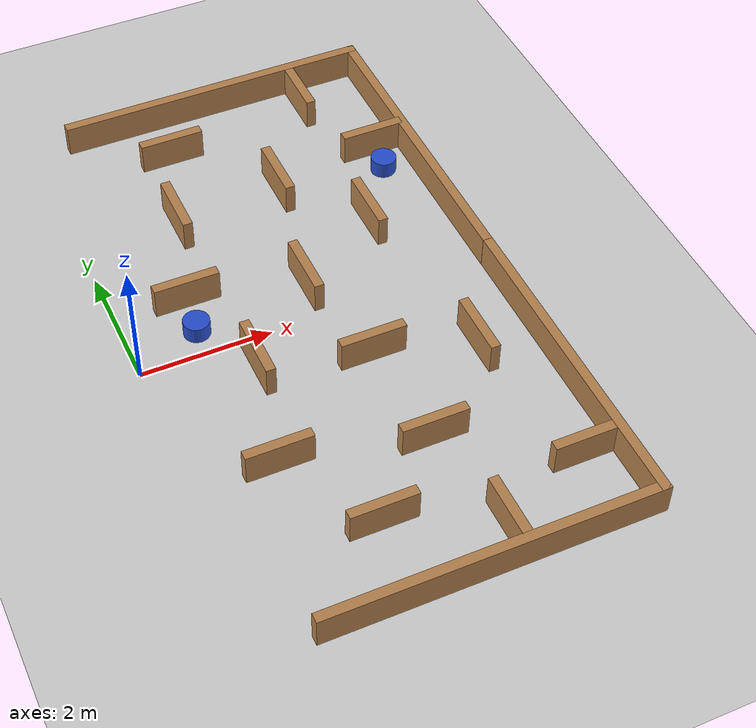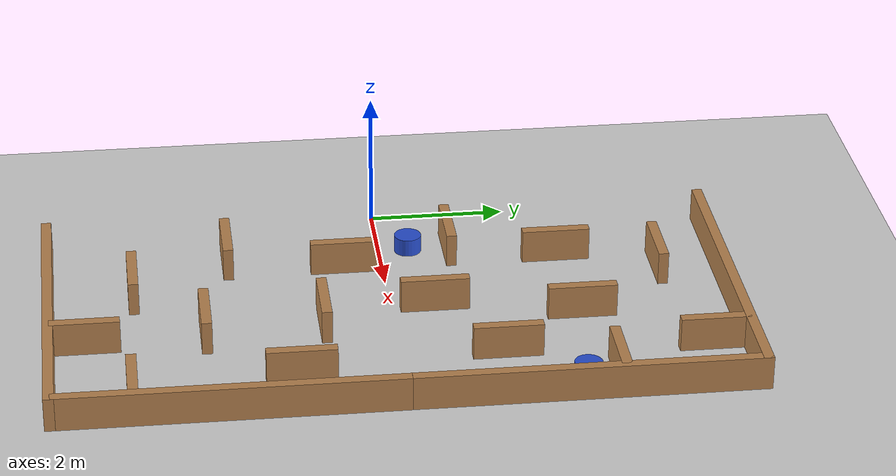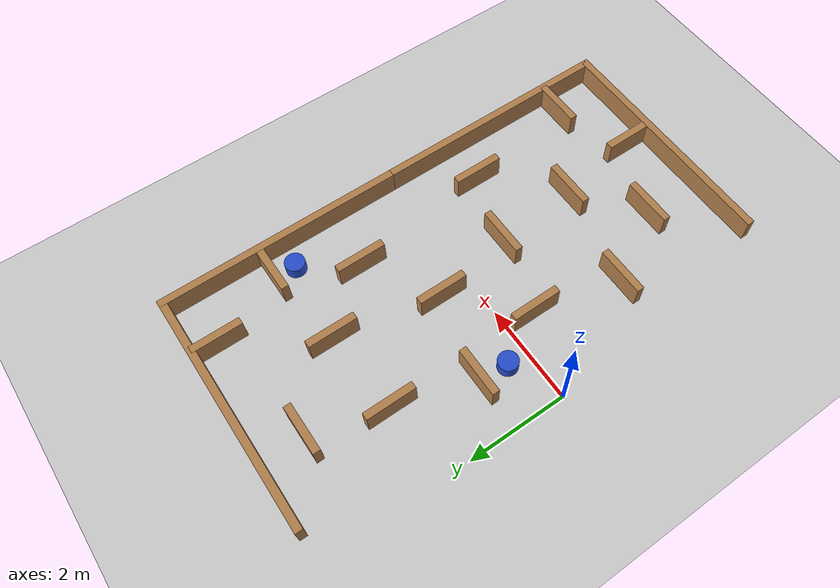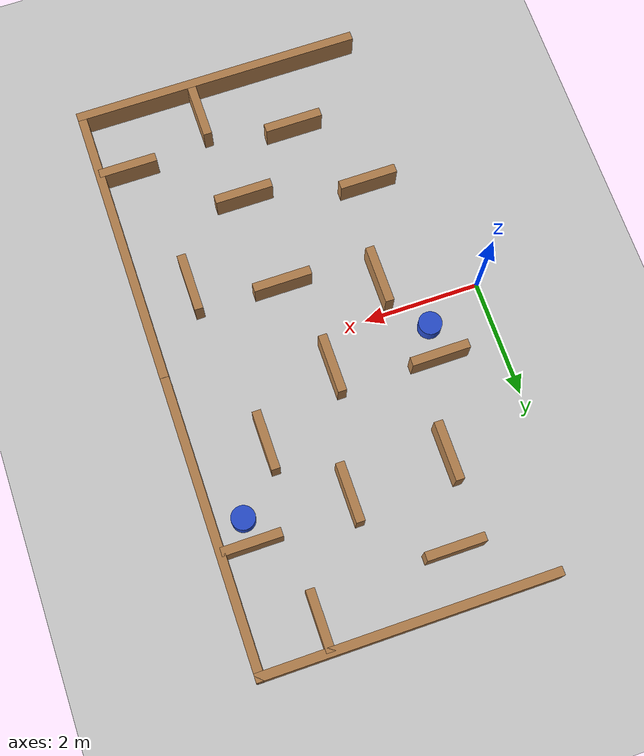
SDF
<sdf version="1.6">
 <world name="default">
  <model name="swarmbots_plaza_corner_1">
   <link name="Wall_11">
    <pose>-1.937 -1.467 0 0 -0 0</pose>
    <visual name="Wall_11_Visual">
     <pose>0 0 0.25 0 -0 0</pose>
     <geometry><box><size>1 0.15 0.5</size></box></geometry>
     <material>
      <script><uri>file://media/materials/scripts/gazebo.material</uri><name>Gazebo/Wood</name></script>
      <ambient>1 1 1 1</ambient>
      <shader type="pixel"/>
     </material>
    </visual>
    <collision name="Wall_11_Collision">
     <pose>0 0 0.25 0 -0 0</pose>
     <geometry><box><size>1 0.15 0.5</size></box></geometry>
     <surface>
      <friction>
       <ode><mu>1</mu><mu2>1</mu2><fdir1>0 0 0</fdir1><slip1>0</slip1><slip2>0</slip2></ode>
       <torsional>
        <coefficient>1</coefficient>
        <patch_radius>0</patch_radius>
        <surface_radius>0</surface_radius>
        <use_patch_radius>1</use_patch_radius>
        <ode><slip>0</slip></ode>
       </torsional>
      </friction>
      <bounce><restitution_coefficient>0</restitution_coefficient><threshold>1e+06</threshold></bounce>
      <contact>
       <collide_without_contact>0</collide_without_contact>
       <collide_without_contact_bitmask>1</collide_without_contact_bitmask>
       <collide_bitmask>1</collide_bitmask>
       <ode>
        <soft_cfm>0</soft_cfm>
        <soft_erp>0.2</soft_erp>
        <kp>1e+13</kp>
        <kd>1</kd>
        <max_vel>0.01</max_vel>
        <min_depth>0</min_depth>
       </ode>
       <bullet>
        <split_impulse>1</split_impulse>
        <split_impulse_penetration_threshold>-0.01</split_impulse_penetration_threshold>
        <soft_cfm>0</soft_cfm>
        <soft_erp>0.2</soft_erp>
        <kp>1e+13</kp>
        <kd>1</kd>
       </bullet>
      </contact>
     </surface>
    </collision>
   </link>
   <link name="Wall_13">
    <pose>-0.22 -1.866 0 0 0 -1.5708</pose>
    <visual name="Wall_13_Visual">
     <pose>0 0 0.25 0 -0 0</pose>
     <geometry><box><size>1 0.15 0.5</size></box></geometry>
     <material>
      <script><uri>file://media/materials/scripts/gazebo.material</uri><name>Gazebo/Wood</name></script>
      <ambient>1 1 1 1</ambient>
      <shader type="pixel"/>
     </material>
    </visual>
    <collision name="Wall_13_Collision">
     <pose>0 0 0.25 0 -0 0</pose>
     <geometry><box><size>1 0.15 0.5</size></box></geometry>
     <surface>
      <friction>
       <ode><mu>1</mu><mu2>1</mu2><fdir1>0 0 0</fdir1><slip1>0</slip1><slip2>0</slip2></ode>
       <torsional>
        <coefficient>1</coefficient>
        <patch_radius>0</patch_radius>
        <surface_radius>0</surface_radius>
        <use_patch_radius>1</use_patch_radius>
        <ode><slip>0</slip></ode>
       </torsional>
      </friction>
      <bounce><restitution_coefficient>0</restitution_coefficient><threshold>1e+06</threshold></bounce>
      <contact>
       <collide_without_contact>0</collide_without_contact>
       <collide_without_contact_bitmask>1</collide_without_contact_bitmask>
       <collide_bitmask>1</collide_bitmask>
       <ode>
        <soft_cfm>0</soft_cfm>
        <soft_erp>0.2</soft_erp>
        <kp>1e+13</kp>
        <kd>1</kd>
        <max_vel>0.01</max_vel>
        <min_depth>0</min_depth>
       </ode>
       <bullet>
        <split_impulse>1</split_impulse>
        <split_impulse_penetration_threshold>-0.01</split_impulse_penetration_threshold>
        <soft_cfm>0</soft_cfm>
        <soft_erp>0.2</soft_erp>
        <kp>1e+13</kp>
        <kd>1</kd>
       </bullet>
      </contact>
     </surface>
    </collision>
   </link>
   <link name="Wall_15">
    <pose>1.195 -1.002 0 0 -0 1.5708</pose>
    <visual name="Wall_15_Visual">
     <pose>0 0 0.25 0 -0 0</pose>
     <geometry><box><size>1 0.15 0.5</size></box></geometry>
     <material>
      <script><uri>file://media/materials/scripts/gazebo.material</uri><name>Gazebo/Wood</name></script>
      <ambient>1 1 1 1</ambient>
      <shader type="pixel"/>
     </material>
    </visual>
    <collision name="Wall_15_Collision">
     <pose>0 0 0.25 0 -0 0</pose>
     <geometry><box><size>1 0.15 0.5</size></box></geometry>
     <surface>
      <friction>
       <ode><mu>1</mu><mu2>1</mu2><fdir1>0 0 0</fdir1><slip1>0</slip1><slip2>0</slip2></ode>
       <torsional>
        <coefficient>1</coefficient>
        <patch_radius>0</patch_radius>
        <surface_radius>0</surface_radius>
        <use_patch_radius>1</use_patch_radius>
        <ode><slip>0</slip></ode>
       </torsional>
      </friction>
      <bounce><restitution_coefficient>0</restitution_coefficient><threshold>1e+06</threshold></bounce>
      <contact>
       <collide_without_contact>0</collide_without_contact>
       <collide_without_contact_bitmask>1</collide_without_contact_bitmask>
       <collide_bitmask>1</collide_bitmask>
       <ode>
        <soft_cfm>0</soft_cfm>
        <soft_erp>0.2</soft_erp>
        <kp>1e+13</kp>
        <kd>1</kd>
        <max_vel>0.01</max_vel>
        <min_depth>0</min_depth>
       </ode>
       <bullet>
        <split_impulse>1</split_impulse>
        <split_impulse_penetration_threshold>-0.01</split_impulse_penetration_threshold>
        <soft_cfm>0</soft_cfm>
        <soft_erp>0.2</soft_erp>
        <kp>1e+13</kp>
        <kd>1</kd>
       </bullet>
      </contact>
     </surface>
    </collision>
   </link>
   <link name="Wall_17">
    <pose>1.288 1.93 0 0 0 -1.5708</pose>
    <visual name="Wall_17_Visual">
     <pose>0 0 0.25 0 -0 0</pose>
     <geometry><box><size>1 0.15 0.5</size></box></geometry>
     <material>
      <script><uri>file://media/materials/scripts/gazebo.material</uri><name>Gazebo/Wood</name></script>
      <ambient>1 1 1 1</ambient>
      <shader type="pixel"/>
     </material>
    </visual>
    <collision name="Wall_17_Collision">
     <pose>0 0 0.25 0 -0 0</pose>
     <geometry><box><size>1 0.15 0.5</size></box></geometry>
     <surface>
      <friction>
       <ode><mu>1</mu><mu2>1</mu2><fdir1>0 0 0</fdir1><slip1>0</slip1><slip2>0</slip2></ode>
       <torsional>
        <coefficient>1</coefficient>
        <patch_radius>0</patch_radius>
        <surface_radius>0</surface_radius>
        <use_patch_radius>1</use_patch_radius>
        <ode><slip>0</slip></ode>
       </torsional>
      </friction>
      <bounce><restitution_coefficient>0</restitution_coefficient><threshold>1e+06</threshold></bounce>
      <contact>
       <collide_without_contact>0</collide_without_contact>
       <collide_without_contact_bitmask>1</collide_without_contact_bitmask>
       <collide_bitmask>1</collide_bitmask>
       <ode>
        <soft_cfm>0</soft_cfm>
        <soft_erp>0.2</soft_erp>
        <kp>1e+13</kp>
        <kd>1</kd>
        <max_vel>0.01</max_vel>
        <min_depth>0</min_depth>
       </ode>
       <bullet>
        <split_impulse>1</split_impulse>
        <split_impulse_penetration_threshold>-0.01</split_impulse_penetration_threshold>
        <soft_cfm>0</soft_cfm>
        <soft_erp>0.2</soft_erp>
        <kp>1e+13</kp>
        <kd>1</kd>
       </bullet>
      </contact>
     </surface>
    </collision>
   </link>
   <link name="Wall_19">
    <pose>1.91128 0.4632 0 0 -0 0</pose>
    <visual name="Wall_19_Visual">
     <pose>0 0 0.25 0 -0 0</pose>
     <geometry><box><size>1 0.15 0.5</size></box></geometry>
     <material>
      <script><uri>file://media/materials/scripts/gazebo.material</uri><name>Gazebo/Wood</name></script>
      <ambient>1 1 1 1</ambient>
      <shader type="pixel"/>
     </material>
    </visual>
    <collision name="Wall_19_Collision">
     <pose>0 0 0.25 0 -0 0</pose>
     <geometry><box><size>1 0.15 0.5</size></box></geometry>
     <surface>
      <friction>
       <ode><mu>1</mu><mu2>1</mu2><fdir1>0 0 0</fdir1><slip1>0</slip1><slip2>0</slip2></ode>
       <torsional>
        <coefficient>1</coefficient>
        <patch_radius>0</patch_radius>
        <surface_radius>0</surface_radius>
        <use_patch_radius>1</use_patch_radius>
        <ode><slip>0</slip></ode>
       </torsional>
      </friction>
      <bounce><restitution_coefficient>0</restitution_coefficient><threshold>1e+06</threshold></bounce>
      <contact>
       <collide_without_contact>0</collide_without_contact>
       <collide_without_contact_bitmask>1</collide_without_contact_bitmask>
       <collide_bitmask>1</collide_bitmask>
       <ode>
        <soft_cfm>0</soft_cfm>
        <soft_erp>0.2</soft_erp>
        <kp>1e+13</kp>
        <kd>1</kd>
        <max_vel>0.01</max_vel>
        <min_depth>0</min_depth>
       </ode>
       <bullet>
        <split_impulse>1</split_impulse>
        <split_impulse_penetration_threshold>-0.01</split_impulse_penetration_threshold>
        <soft_cfm>0</soft_cfm>
        <soft_erp>0.2</soft_erp>
        <kp>1e+13</kp>
        <kd>1</kd>
       </bullet>
      </contact>
     </surface>
    </collision>
   </link>
   <link name="Wall_2">
    <pose>0 2.425 0 0 -0 0</pose>
    <visual name="Wall_2_Visual">
     <pose>0 0 0.25 0 -0 0</pose>
     <geometry><box><size>5 0.15 0.5</size></box></geometry>
     <material>
      <script><uri>file://media/materials/scripts/gazebo.material</uri><name>Gazebo/Wood</name></script>
      <ambient>1 1 1 1</ambient>
      <shader type="pixel"/>
     </material>
    </visual>
    <collision name="Wall_2_Collision">
     <pose>0 0 0.25 0 -0 0</pose>
     <geometry><box><size>5 0.15 0.5</size></box></geometry>
     <surface>
      <friction>
       <ode><mu>1</mu><mu2>1</mu2><fdir1>0 0 0</fdir1><slip1>0</slip1><slip2>0</slip2></ode>
       <torsional>
        <coefficient>1</coefficient>
        <patch_radius>0</patch_radius>
        <surface_radius>0</surface_radius>
        <use_patch_radius>1</use_patch_radius>
        <ode><slip>0</slip></ode>
       </torsional>
      </friction>
      <bounce><restitution_coefficient>0</restitution_coefficient><threshold>1e+06</threshold></bounce>
      <contact>
       <collide_without_contact>0</collide_without_contact>
       <collide_without_contact_bitmask>1</collide_without_contact_bitmask>
       <collide_bitmask>1</collide_bitmask>
       <ode>
        <soft_cfm>0</soft_cfm>
        <soft_erp>0.2</soft_erp>
        <kp>1e+13</kp>
        <kd>1</kd>
        <max_vel>0.01</max_vel>
        <min_depth>0</min_depth>
       </ode>
       <bullet>
        <split_impulse>1</split_impulse>
        <split_impulse_penetration_threshold>-0.01</split_impulse_penetration_threshold>
        <soft_cfm>0</soft_cfm>
        <soft_erp>0.2</soft_erp>
        <kp>1e+13</kp>
        <kd>1</kd>
       </bullet>
      </contact>
     </surface>
    </collision>
   </link>
   <link name="Wall_21">
    <pose>0.204 0.215 0 0 0 -1.5708</pose>
    <visual name="Wall_21_Visual">
     <pose>0 0 0.25 0 -0 0</pose>
     <geometry><box><size>1 0.15 0.5</size></box></geometry>
     <material>
      <script><uri>file://media/materials/scripts/gazebo.material</uri><name>Gazebo/Wood</name></script>
      <ambient>1 1 1 1</ambient>
      <shader type="pixel"/>
     </material>
    </visual>
    <collision name="Wall_21_Collision">
     <pose>0 0 0.25 0 -0 0</pose>
     <geometry><box><size>1 0.15 0.5</size></box></geometry>
     <surface>
      <friction>
       <ode><mu>1</mu><mu2>1</mu2><fdir1>0 0 0</fdir1><slip1>0</slip1><slip2>0</slip2></ode>
       <torsional>
        <coefficient>1</coefficient>
        <patch_radius>0</patch_radius>
        <surface_radius>0</surface_radius>
        <use_patch_radius>1</use_patch_radius>
        <ode><slip>0</slip></ode>
       </torsional>
      </friction>
      <bounce><restitution_coefficient>0</restitution_coefficient><threshold>1e+06</threshold></bounce>
      <contact>
       <collide_without_contact>0</collide_without_contact>
       <collide_without_contact_bitmask>1</collide_without_contact_bitmask>
       <collide_bitmask>1</collide_bitmask>
       <ode>
        <soft_cfm>0</soft_cfm>
        <soft_erp>0.2</soft_erp>
        <kp>1e+13</kp>
        <kd>1</kd>
        <max_vel>0.01</max_vel>
        <min_depth>0</min_depth>
       </ode>
       <bullet>
        <split_impulse>1</split_impulse>
        <split_impulse_penetration_threshold>-0.01</split_impulse_penetration_threshold>
        <soft_cfm>0</soft_cfm>
        <soft_erp>0.2</soft_erp>
        <kp>1e+13</kp>
        <kd>1</kd>
       </bullet>
      </contact>
     </surface>
    </collision>
   </link>
   <link name="Wall_3">
    <pose>2.425 0 0 0 0 -1.5708</pose>
    <visual name="Wall_3_Visual">
     <pose>0 0 0.25 0 -0 0</pose>
     <geometry><box><size>5 0.15 0.5</size></box></geometry>
     <material>
      <script><uri>file://media/materials/scripts/gazebo.material</uri><name>Gazebo/Wood</name></script>
      <ambient>1 1 1 1</ambient>
      <shader type="pixel"/>
     </material>
    </visual>
    <collision name="Wall_3_Collision">
     <pose>0 0 0.25 0 -0 0</pose>
     <geometry><box><size>5 0.15 0.5</size></box></geometry>
     <surface>
      <friction>
       <ode><mu>1</mu><mu2>1</mu2><fdir1>0 0 0</fdir1><slip1>0</slip1><slip2>0</slip2></ode>
       <torsional>
        <coefficient>1</coefficient>
        <patch_radius>0</patch_radius>
        <surface_radius>0</surface_radius>
        <use_patch_radius>1</use_patch_radius>
        <ode><slip>0</slip></ode>
       </torsional>
      </friction>
      <bounce><restitution_coefficient>0</restitution_coefficient><threshold>1e+06</threshold></bounce>
      <contact>
       <collide_without_contact>0</collide_without_contact>
       <collide_without_contact_bitmask>1</collide_without_contact_bitmask>
       <collide_bitmask>1</collide_bitmask>
       <ode>
        <soft_cfm>0</soft_cfm>
        <soft_erp>0.2</soft_erp>
        <kp>1e+13</kp>
        <kd>1</kd>
        <max_vel>0.01</max_vel>
        <min_depth>0</min_depth>
       </ode>
       <bullet>
        <split_impulse>1</split_impulse>
        <split_impulse_penetration_threshold>-0.01</split_impulse_penetration_threshold>
        <soft_cfm>0</soft_cfm>
        <soft_erp>0.2</soft_erp>
        <kp>1e+13</kp>
        <kd>1</kd>
       </bullet>
      </contact>
     </surface>
    </collision>
   </link>
   <link name="Wall_7">
    <pose>-1.064 1.548 0 0 -0 0</pose>
    <visual name="Wall_7_Visual">
     <pose>0 0 0.25 0 -0 0</pose>
     <geometry><box><size>1 0.15 0.5</size></box></geometry>
     <material>
      <script><uri>file://media/materials/scripts/gazebo.material</uri><name>Gazebo/Wood</name></script>
      <ambient>1 1 1 1</ambient>
      <shader type="pixel"/>
     </material>
    </visual>
    <collision name="Wall_7_Collision">
     <pose>0 0 0.25 0 -0 0</pose>
     <geometry><box><size>1 0.15 0.5</size></box></geometry>
     <surface>
      <friction>
       <ode><mu>1</mu><mu2>1</mu2><fdir1>0 0 0</fdir1><slip1>0</slip1><slip2>0</slip2></ode>
       <torsional>
        <coefficient>1</coefficient>
        <patch_radius>0</patch_radius>
        <surface_radius>0</surface_radius>
        <use_patch_radius>1</use_patch_radius>
        <ode><slip>0</slip></ode>
       </torsional>
      </friction>
      <bounce><restitution_coefficient>0</restitution_coefficient><threshold>1e+06</threshold></bounce>
      <contact>
       <collide_without_contact>0</collide_without_contact>
       <collide_without_contact_bitmask>1</collide_without_contact_bitmask>
       <collide_bitmask>1</collide_bitmask>
       <ode>
        <soft_cfm>0</soft_cfm>
        <soft_erp>0.2</soft_erp>
        <kp>1e+13</kp>
        <kd>1</kd>
        <max_vel>0.01</max_vel>
        <min_depth>0</min_depth>
       </ode>
       <bullet>
        <split_impulse>1</split_impulse>
        <split_impulse_penetration_threshold>-0.01</split_impulse_penetration_threshold>
        <soft_cfm>0</soft_cfm>
        <soft_erp>0.2</soft_erp>
        <kp>1e+13</kp>
        <kd>1</kd>
       </bullet>
      </contact>
     </surface>
    </collision>
   </link>
   <link name="Wall_9">
    <pose>-1.502 0.092 0 0 0 -1.5708</pose>
    <visual name="Wall_9_Visual">
     <pose>0 0 0.25 0 -0 0</pose>
     <geometry><box><size>1 0.15 0.5</size></box></geometry>
     <material>
      <script><uri>file://media/materials/scripts/gazebo.material</uri><name>Gazebo/Wood</name></script>
      <ambient>1 1 1 1</ambient>
      <shader type="pixel"/>
     </material>
    </visual>
    <collision name="Wall_9_Collision">
     <pose>0 0 0.25 0 -0 0</pose>
     <geometry><box><size>1 0.15 0.5</size></box></geometry>
     <surface>
      <friction>
       <ode><mu>1</mu><mu2>1</mu2><fdir1>0 0 0</fdir1><slip1>0</slip1><slip2>0</slip2></ode>
       <torsional>
        <coefficient>1</coefficient>
        <patch_radius>0</patch_radius>
        <surface_radius>0</surface_radius>
        <use_patch_radius>1</use_patch_radius>
        <ode><slip>0</slip></ode>
       </torsional>
      </friction>
      <bounce><restitution_coefficient>0</restitution_coefficient><threshold>1e+06</threshold></bounce>
      <contact>
       <collide_without_contact>0</collide_without_contact>
       <collide_without_contact_bitmask>1</collide_without_contact_bitmask>
       <collide_bitmask>1</collide_bitmask>
       <ode>
        <soft_cfm>0</soft_cfm>
        <soft_erp>0.2</soft_erp>
        <kp>1e+13</kp>
        <kd>1</kd>
        <max_vel>0.01</max_vel>
        <min_depth>0</min_depth>
       </ode>
       <bullet>
        <split_impulse>1</split_impulse>
        <split_impulse_penetration_threshold>-0.01</split_impulse_penetration_threshold>
        <soft_cfm>0</soft_cfm>
        <soft_erp>0.2</soft_erp>
        <kp>1e+13</kp>
        <kd>1</kd>
       </bullet>
      </contact>
     </surface>
    </collision>
   </link>
   <static>1</static>
   <pose>3.02851 2.5 0 0 -0 0</pose>
  </model>
  <model name="swarmbots_plaza_corner_1_2">
   <link name="Wall_11">
    <pose>-1.937 -1.467 0 0 -0 0</pose>
    <visual name="Wall_11_Visual">
     <pose>0 0 0.25 0 -0 0</pose>
     <geometry><box><size>1 0.15 0.5</size></box></geometry>
     <material>
      <script><uri>file://media/materials/scripts/gazebo.material</uri><name>Gazebo/Wood</name></script>
      <ambient>1 1 1 1</ambient>
      <shader type="pixel"/>
     </material>
    </visual>
    <collision name="Wall_11_Collision">
     <pose>0 0 0.25 0 -0 0</pose>
     <geometry><box><size>1 0.15 0.5</size></box></geometry>
     <surface>
      <friction>
       <ode><mu>1</mu><mu2>1</mu2><fdir1>0 0 0</fdir1><slip1>0</slip1><slip2>0</slip2></ode>
       <torsional>
        <coefficient>1</coefficient>
        <patch_radius>0</patch_radius>
        <surface_radius>0</surface_radius>
        <use_patch_radius>1</use_patch_radius>
        <ode><slip>0</slip></ode>
       </torsional>
      </friction>
      <bounce><restitution_coefficient>0</restitution_coefficient><threshold>1e+06</threshold></bounce>
      <contact>
       <collide_without_contact>0</collide_without_contact>
       <collide_without_contact_bitmask>1</collide_without_contact_bitmask>
       <collide_bitmask>1</collide_bitmask>
       <ode>
        <soft_cfm>0</soft_cfm>
        <soft_erp>0.2</soft_erp>
        <kp>1e+13</kp>
        <kd>1</kd>
        <max_vel>0.01</max_vel>
        <min_depth>0</min_depth>
       </ode>
       <bullet>
        <split_impulse>1</split_impulse>
        <split_impulse_penetration_threshold>-0.01</split_impulse_penetration_threshold>
        <soft_cfm>0</soft_cfm>
        <soft_erp>0.2</soft_erp>
        <kp>1e+13</kp>
        <kd>1</kd>
       </bullet>
      </contact>
     </surface>
    </collision>
   </link>
   <link name="Wall_13">
    <pose>-0.22 -1.866 0 0 0 -1.5708</pose>
    <visual name="Wall_13_Visual">
     <pose>0 0 0.25 0 -0 0</pose>
     <geometry><box><size>1 0.15 0.5</size></box></geometry>
     <material>
      <script><uri>file://media/materials/scripts/gazebo.material</uri><name>Gazebo/Wood</name></script>
      <ambient>1 1 1 1</ambient>
      <shader type="pixel"/>
     </material>
    </visual>
    <collision name="Wall_13_Collision">
     <pose>0 0 0.25 0 -0 0</pose>
     <geometry><box><size>1 0.15 0.5</size></box></geometry>
     <surface>
      <friction>
       <ode><mu>1</mu><mu2>1</mu2><fdir1>0 0 0</fdir1><slip1>0</slip1><slip2>0</slip2></ode>
       <torsional>
        <coefficient>1</coefficient>
        <patch_radius>0</patch_radius>
        <surface_radius>0</surface_radius>
        <use_patch_radius>1</use_patch_radius>
        <ode><slip>0</slip></ode>
       </torsional>
      </friction>
      <bounce><restitution_coefficient>0</restitution_coefficient><threshold>1e+06</threshold></bounce>
      <contact>
       <collide_without_contact>0</collide_without_contact>
       <collide_without_contact_bitmask>1</collide_without_contact_bitmask>
       <collide_bitmask>1</collide_bitmask>
       <ode>
        <soft_cfm>0</soft_cfm>
        <soft_erp>0.2</soft_erp>
        <kp>1e+13</kp>
        <kd>1</kd>
        <max_vel>0.01</max_vel>
        <min_depth>0</min_depth>
       </ode>
       <bullet>
        <split_impulse>1</split_impulse>
        <split_impulse_penetration_threshold>-0.01</split_impulse_penetration_threshold>
        <soft_cfm>0</soft_cfm>
        <soft_erp>0.2</soft_erp>
        <kp>1e+13</kp>
        <kd>1</kd>
       </bullet>
      </contact>
     </surface>
    </collision>
   </link>
   <link name="Wall_15">
    <pose>1.195 -1.002 0 0 -0 1.5708</pose>
    <visual name="Wall_15_Visual">
     <pose>0 0 0.25 0 -0 0</pose>
     <geometry><box><size>1 0.15 0.5</size></box></geometry>
     <material>
      <script><uri>file://media/materials/scripts/gazebo.material</uri><name>Gazebo/Wood</name></script>
      <ambient>1 1 1 1</ambient>
      <shader type="pixel"/>
     </material>
    </visual>
    <collision name="Wall_15_Collision">
     <pose>0 0 0.25 0 -0 0</pose>
     <geometry><box><size>1 0.15 0.5</size></box></geometry>
     <surface>
      <friction>
       <ode><mu>1</mu><mu2>1</mu2><fdir1>0 0 0</fdir1><slip1>0</slip1><slip2>0</slip2></ode>
       <torsional>
        <coefficient>1</coefficient>
        <patch_radius>0</patch_radius>
        <surface_radius>0</surface_radius>
        <use_patch_radius>1</use_patch_radius>
        <ode><slip>0</slip></ode>
       </torsional>
      </friction>
      <bounce><restitution_coefficient>0</restitution_coefficient><threshold>1e+06</threshold></bounce>
      <contact>
       <collide_without_contact>0</collide_without_contact>
       <collide_without_contact_bitmask>1</collide_without_contact_bitmask>
       <collide_bitmask>1</collide_bitmask>
       <ode>
        <soft_cfm>0</soft_cfm>
        <soft_erp>0.2</soft_erp>
        <kp>1e+13</kp>
        <kd>1</kd>
        <max_vel>0.01</max_vel>
        <min_depth>0</min_depth>
       </ode>
       <bullet>
        <split_impulse>1</split_impulse>
        <split_impulse_penetration_threshold>-0.01</split_impulse_penetration_threshold>
        <soft_cfm>0</soft_cfm>
        <soft_erp>0.2</soft_erp>
        <kp>1e+13</kp>
        <kd>1</kd>
       </bullet>
      </contact>
     </surface>
    </collision>
   </link>
   <link name="Wall_17">
    <pose>1.288 1.93 0 0 0 -1.5708</pose>
    <visual name="Wall_17_Visual">
     <pose>0 0 0.25 0 -0 0</pose>
     <geometry><box><size>1 0.15 0.5</size></box></geometry>
     <material>
      <script><uri>file://media/materials/scripts/gazebo.material</uri><name>Gazebo/Wood</name></script>
      <ambient>1 1 1 1</ambient>
      <shader type="pixel"/>
     </material>
    </visual>
    <collision name="Wall_17_Collision">
     <pose>0 0 0.25 0 -0 0</pose>
     <geometry><box><size>1 0.15 0.5</size></box></geometry>
     <surface>
      <friction>
       <ode><mu>1</mu><mu2>1</mu2><fdir1>0 0 0</fdir1><slip1>0</slip1><slip2>0</slip2></ode>
       <torsional>
        <coefficient>1</coefficient>
        <patch_radius>0</patch_radius>
        <surface_radius>0</surface_radius>
        <use_patch_radius>1</use_patch_radius>
        <ode><slip>0</slip></ode>
       </torsional>
      </friction>
      <bounce><restitution_coefficient>0</restitution_coefficient><threshold>1e+06</threshold></bounce>
      <contact>
       <collide_without_contact>0</collide_without_contact>
       <collide_without_contact_bitmask>1</collide_without_contact_bitmask>
       <collide_bitmask>1</collide_bitmask>
       <ode>
        <soft_cfm>0</soft_cfm>
        <soft_erp>0.2</soft_erp>
        <kp>1e+13</kp>
        <kd>1</kd>
        <max_vel>0.01</max_vel>
        <min_depth>0</min_depth>
       </ode>
       <bullet>
        <split_impulse>1</split_impulse>
        <split_impulse_penetration_threshold>-0.01</split_impulse_penetration_threshold>
        <soft_cfm>0</soft_cfm>
        <soft_erp>0.2</soft_erp>
        <kp>1e+13</kp>
        <kd>1</kd>
       </bullet>
      </contact>
     </surface>
    </collision>
   </link>
   <link name="Wall_19">
    <pose>1.91128 0.4632 0 0 -0 0</pose>
    <visual name="Wall_19_Visual">
     <pose>0 0 0.25 0 -0 0</pose>
     <geometry><box><size>1 0.15 0.5</size></box></geometry>
     <material>
      <script><uri>file://media/materials/scripts/gazebo.material</uri><name>Gazebo/Wood</name></script>
      <ambient>1 1 1 1</ambient>
      <shader type="pixel"/>
     </material>
    </visual>
    <collision name="Wall_19_Collision">
     <pose>0 0 0.25 0 -0 0</pose>
     <geometry><box><size>1 0.15 0.5</size></box></geometry>
     <surface>
      <friction>
       <ode><mu>1</mu><mu2>1</mu2><fdir1>0 0 0</fdir1><slip1>0</slip1><slip2>0</slip2></ode>
       <torsional>
        <coefficient>1</coefficient>
        <patch_radius>0</patch_radius>
        <surface_radius>0</surface_radius>
        <use_patch_radius>1</use_patch_radius>
        <ode><slip>0</slip></ode>
       </torsional>
      </friction>
      <bounce><restitution_coefficient>0</restitution_coefficient><threshold>1e+06</threshold></bounce>
      <contact>
       <collide_without_contact>0</collide_without_contact>
       <collide_without_contact_bitmask>1</collide_without_contact_bitmask>
       <collide_bitmask>1</collide_bitmask>
       <ode>
        <soft_cfm>0</soft_cfm>
        <soft_erp>0.2</soft_erp>
        <kp>1e+13</kp>
        <kd>1</kd>
        <max_vel>0.01</max_vel>
        <min_depth>0</min_depth>
       </ode>
       <bullet>
        <split_impulse>1</split_impulse>
        <split_impulse_penetration_threshold>-0.01</split_impulse_penetration_threshold>
        <soft_cfm>0</soft_cfm>
        <soft_erp>0.2</soft_erp>
        <kp>1e+13</kp>
        <kd>1</kd>
       </bullet>
      </contact>
     </surface>
    </collision>
   </link>
   <link name="Wall_2">
    <pose>0 2.425 0 0 -0 0</pose>
    <visual name="Wall_2_Visual">
     <pose>0 0 0.25 0 -0 0</pose>
     <geometry><box><size>5 0.15 0.5</size></box></geometry>
     <material>
      <script><uri>file://media/materials/scripts/gazebo.material</uri><name>Gazebo/Wood</name></script>
      <ambient>1 1 1 1</ambient>
      <shader type="pixel"/>
     </material>
    </visual>
    <collision name="Wall_2_Collision">
     <pose>0 0 0.25 0 -0 0</pose>
     <geometry><box><size>5 0.15 0.5</size></box></geometry>
     <surface>
      <friction>
       <ode><mu>1</mu><mu2>1</mu2><fdir1>0 0 0</fdir1><slip1>0</slip1><slip2>0</slip2></ode>
       <torsional>
        <coefficient>1</coefficient>
        <patch_radius>0</patch_radius>
        <surface_radius>0</surface_radius>
        <use_patch_radius>1</use_patch_radius>
        <ode><slip>0</slip></ode>
       </torsional>
      </friction>
      <bounce><restitution_coefficient>0</restitution_coefficient><threshold>1e+06</threshold></bounce>
      <contact>
       <collide_without_contact>0</collide_without_contact>
       <collide_without_contact_bitmask>1</collide_without_contact_bitmask>
       <collide_bitmask>1</collide_bitmask>
       <ode>
        <soft_cfm>0</soft_cfm>
        <soft_erp>0.2</soft_erp>
        <kp>1e+13</kp>
        <kd>1</kd>
        <max_vel>0.01</max_vel>
        <min_depth>0</min_depth>
       </ode>
       <bullet>
        <split_impulse>1</split_impulse>
        <split_impulse_penetration_threshold>-0.01</split_impulse_penetration_threshold>
        <soft_cfm>0</soft_cfm>
        <soft_erp>0.2</soft_erp>
        <kp>1e+13</kp>
        <kd>1</kd>
       </bullet>
      </contact>
     </surface>
    </collision>
   </link>
   <link name="Wall_21">
    <pose>0.204 0.215 0 0 0 -1.5708</pose>
    <visual name="Wall_21_Visual">
     <pose>0 0 0.25 0 -0 0</pose>
     <geometry><box><size>1 0.15 0.5</size></box></geometry>
     <material>
      <script><uri>file://media/materials/scripts/gazebo.material</uri><name>Gazebo/Wood</name></script>
      <ambient>1 1 1 1</ambient>
      <shader type="pixel"/>
     </material>
    </visual>
    <collision name="Wall_21_Collision">
     <pose>0 0 0.25 0 -0 0</pose>
     <geometry><box><size>1 0.15 0.5</size></box></geometry>
     <surface>
      <friction>
       <ode><mu>1</mu><mu2>1</mu2><fdir1>0 0 0</fdir1><slip1>0</slip1><slip2>0</slip2></ode>
       <torsional>
        <coefficient>1</coefficient>
        <patch_radius>0</patch_radius>
        <surface_radius>0</surface_radius>
        <use_patch_radius>1</use_patch_radius>
        <ode><slip>0</slip></ode>
       </torsional>
      </friction>
      <bounce><restitution_coefficient>0</restitution_coefficient><threshold>1e+06</threshold></bounce>
      <contact>
       <collide_without_contact>0</collide_without_contact>
       <collide_without_contact_bitmask>1</collide_without_contact_bitmask>
       <collide_bitmask>1</collide_bitmask>
       <ode>
        <soft_cfm>0</soft_cfm>
        <soft_erp>0.2</soft_erp>
        <kp>1e+13</kp>
        <kd>1</kd>
        <max_vel>0.01</max_vel>
        <min_depth>0</min_depth>
       </ode>
       <bullet>
        <split_impulse>1</split_impulse>
        <split_impulse_penetration_threshold>-0.01</split_impulse_penetration_threshold>
        <soft_cfm>0</soft_cfm>
        <soft_erp>0.2</soft_erp>
        <kp>1e+13</kp>
        <kd>1</kd>
       </bullet>
      </contact>
     </surface>
    </collision>
   </link>
   <link name="Wall_3">
    <pose>2.425 0 0 0 0 -1.5708</pose>
    <visual name="Wall_3_Visual">
     <pose>0 0 0.25 0 -0 0</pose>
     <geometry><box><size>5 0.15 0.5</size></box></geometry>
     <material>
      <script><uri>file://media/materials/scripts/gazebo.material</uri><name>Gazebo/Wood</name></script>
      <ambient>1 1 1 1</ambient>
      <shader type="pixel"/>
     </material>
    </visual>
    <collision name="Wall_3_Collision">
     <pose>0 0 0.25 0 -0 0</pose>
     <geometry><box><size>5 0.15 0.5</size></box></geometry>
     <surface>
      <friction>
       <ode><mu>1</mu><mu2>1</mu2><fdir1>0 0 0</fdir1><slip1>0</slip1><slip2>0</slip2></ode>
       <torsional>
        <coefficient>1</coefficient>
        <patch_radius>0</patch_radius>
        <surface_radius>0</surface_radius>
        <use_patch_radius>1</use_patch_radius>
        <ode><slip>0</slip></ode>
       </torsional>
      </friction>
      <bounce><restitution_coefficient>0</restitution_coefficient><threshold>1e+06</threshold></bounce>
      <contact>
       <collide_without_contact>0</collide_without_contact>
       <collide_without_contact_bitmask>1</collide_without_contact_bitmask>
       <collide_bitmask>1</collide_bitmask>
       <ode>
        <soft_cfm>0</soft_cfm>
        <soft_erp>0.2</soft_erp>
        <kp>1e+13</kp>
        <kd>1</kd>
        <max_vel>0.01</max_vel>
        <min_depth>0</min_depth>
       </ode>
       <bullet>
        <split_impulse>1</split_impulse>
        <split_impulse_penetration_threshold>-0.01</split_impulse_penetration_threshold>
        <soft_cfm>0</soft_cfm>
        <soft_erp>0.2</soft_erp>
        <kp>1e+13</kp>
        <kd>1</kd>
       </bullet>
      </contact>
     </surface>
    </collision>
   </link>
   <link name="Wall_7">
    <pose>-1.064 1.548 0 0 -0 0</pose>
    <visual name="Wall_7_Visual">
     <pose>0 0 0.25 0 -0 0</pose>
     <geometry><box><size>1 0.15 0.5</size></box></geometry>
     <material>
      <script><uri>file://media/materials/scripts/gazebo.material</uri><name>Gazebo/Wood</name></script>
      <ambient>1 1 1 1</ambient>
      <shader type="pixel"/>
     </material>
    </visual>
    <collision name="Wall_7_Collision">
     <pose>0 0 0.25 0 -0 0</pose>
     <geometry><box><size>1 0.15 0.5</size></box></geometry>
     <surface>
      <friction>
       <ode><mu>1</mu><mu2>1</mu2><fdir1>0 0 0</fdir1><slip1>0</slip1><slip2>0</slip2></ode>
       <torsional>
        <coefficient>1</coefficient>
        <patch_radius>0</patch_radius>
        <surface_radius>0</surface_radius>
        <use_patch_radius>1</use_patch_radius>
        <ode><slip>0</slip></ode>
       </torsional>
      </friction>
      <bounce><restitution_coefficient>0</restitution_coefficient><threshold>1e+06</threshold></bounce>
      <contact>
       <collide_without_contact>0</collide_without_contact>
       <collide_without_contact_bitmask>1</collide_without_contact_bitmask>
       <collide_bitmask>1</collide_bitmask>
       <ode>
        <soft_cfm>0</soft_cfm>
        <soft_erp>0.2</soft_erp>
        <kp>1e+13</kp>
        <kd>1</kd>
        <max_vel>0.01</max_vel>
        <min_depth>0</min_depth>
       </ode>
       <bullet>
        <split_impulse>1</split_impulse>
        <split_impulse_penetration_threshold>-0.01</split_impulse_penetration_threshold>
        <soft_cfm>0</soft_cfm>
        <soft_erp>0.2</soft_erp>
        <kp>1e+13</kp>
        <kd>1</kd>
       </bullet>
      </contact>
     </surface>
    </collision>
   </link>
   <link name="Wall_9">
    <pose>-1.502 0.092 0 0 0 -1.5708</pose>
    <visual name="Wall_9_Visual">
     <pose>0 0 0.25 0 -0 0</pose>
     <geometry><box><size>1 0.15 0.5</size></box></geometry>
     <material>
      <script><uri>file://media/materials/scripts/gazebo.material</uri><name>Gazebo/Wood</name></script>
      <ambient>1 1 1 1</ambient>
      <shader type="pixel"/>
     </material>
    </visual>
    <collision name="Wall_9_Collision">
     <pose>0 0 0.25 0 -0 0</pose>
     <geometry><box><size>1 0.15 0.5</size></box></geometry>
     <surface>
      <friction>
       <ode><mu>1</mu><mu2>1</mu2><fdir1>0 0 0</fdir1><slip1>0</slip1><slip2>0</slip2></ode>
       <torsional>
        <coefficient>1</coefficient>
        <patch_radius>0</patch_radius>
        <surface_radius>0</surface_radius>
        <use_patch_radius>1</use_patch_radius>
        <ode><slip>0</slip></ode>
       </torsional>
      </friction>
      <bounce><restitution_coefficient>0</restitution_coefficient><threshold>1e+06</threshold></bounce>
      <contact>
       <collide_without_contact>0</collide_without_contact>
       <collide_without_contact_bitmask>1</collide_without_contact_bitmask>
       <collide_bitmask>1</collide_bitmask>
       <ode>
        <soft_cfm>0</soft_cfm>
        <soft_erp>0.2</soft_erp>
        <kp>1e+13</kp>
        <kd>1</kd>
        <max_vel>0.01</max_vel>
        <min_depth>0</min_depth>
       </ode>
       <bullet>
        <split_impulse>1</split_impulse>
        <split_impulse_penetration_threshold>-0.01</split_impulse_penetration_threshold>
        <soft_cfm>0</soft_cfm>
        <soft_erp>0.2</soft_erp>
        <kp>1e+13</kp>
        <kd>1</kd>
       </bullet>
      </contact>
     </surface>
    </collision>
   </link>
   <static>1</static>
   <pose>3.02973 -2.50011 0 0 0 -1.571</pose>
  </model>
  <model name="swarmbot_battery_charger_1">
   <link name="link">
    <visual name="visual">
     <geometry><cylinder><radius>0.2</radius><length>0.5</length></cylinder></geometry>
     <material>
      <script><name>Gazebo/Blue</name><uri>file://media/materials/scripts/gazebo.material</uri></script>
      <shader type="pixel"/>
     </material>
    </visual>
    <collision name="collision">
     <geometry><cylinder><radius>0.2</radius><length>0.5</length></cylinder></geometry>
     <surface>
      <friction>
       <ode><mu>1</mu><mu2>1</mu2><fdir1>0 0 0</fdir1><slip1>0</slip1><slip2>0</slip2></ode>
       <torsional>
        <coefficient>1</coefficient>
        <patch_radius>0</patch_radius>
        <surface_radius>0</surface_radius>
        <use_patch_radius>1</use_patch_radius>
        <ode><slip>0</slip></ode>
       </torsional>
      </friction>
      <bounce><restitution_coefficient>0</restitution_coefficient><threshold>1e+06</threshold></bounce>
      <contact>
       <collide_without_contact>0</collide_without_contact>
       <collide_without_contact_bitmask>1</collide_without_contact_bitmask>
       <collide_bitmask>1</collide_bitmask>
       <ode>
        <soft_cfm>0</soft_cfm>
        <soft_erp>0.2</soft_erp>
        <kp>1e+13</kp>
        <kd>1</kd>
        <max_vel>0.01</max_vel>
        <min_depth>0</min_depth>
       </ode>
       <bullet>
        <split_impulse>1</split_impulse>
        <split_impulse_penetration_threshold>-0.01</split_impulse_penetration_threshold>
        <soft_cfm>0</soft_cfm>
        <soft_erp>0.2</soft_erp>
        <kp>1e+13</kp>
        <kd>1</kd>
       </bullet>
      </contact>
     </surface>
    </collision>
   </link>
   <static>1</static>
   <pose>1.02154 0.442455 0 0 -0 0</pose>
  </model>
  <model name="swarmbot_battery_charger_2">
   <link name="link">
    <visual name="visual">
     <geometry><cylinder><radius>0.2</radius><length>0.5</length></cylinder></geometry>
     <material>
      <script><name>Gazebo/Blue</name><uri>file://media/materials/scripts/gazebo.material</uri></script>
      <shader type="pixel"/>
     </material>
    </visual>
    <collision name="collision">
     <geometry><cylinder><radius>0.2</radius><length>0.5</length></cylinder></geometry>
     <surface>
      <friction>
       <ode><mu>1</mu><mu2>1</mu2><fdir1>0 0 0</fdir1><slip1>0</slip1><slip2>0</slip2></ode>
       <torsional>
        <coefficient>1</coefficient>
        <patch_radius>0</patch_radius>
        <surface_radius>0</surface_radius>
        <use_patch_radius>1</use_patch_radius>
        <ode><slip>0</slip></ode>
       </torsional>
      </friction>
      <bounce><restitution_coefficient>0</restitution_coefficient><threshold>1e+06</threshold></bounce>
      <contact>
       <collide_without_contact>0</collide_without_contact>
       <collide_without_contact_bitmask>1</collide_without_contact_bitmask>
       <collide_bitmask>1</collide_bitmask>
       <ode>
        <soft_cfm>0</soft_cfm>
        <soft_erp>0.2</soft_erp>
        <kp>1e+13</kp>
        <kd>1</kd>
        <max_vel>0.01</max_vel>
        <min_depth>0</min_depth>
       </ode>
       <bullet>
        <split_impulse>1</split_impulse>
        <split_impulse_penetration_threshold>-0.01</split_impulse_penetration_threshold>
        <soft_cfm>0</soft_cfm>
        <soft_erp>0.2</soft_erp>
        <kp>1e+13</kp>
        <kd>1</kd>
       </bullet>
      </contact>
     </surface>
    </collision>
   </link>
   <static>1</static>
   <pose>4.9463 2.52002 0 0 -0 0</pose>
  </model>
  <model name="ground_plane">
   <static>1</static>
   <link name="link">
    <collision name="collision">
     <geometry><plane><normal>0 0 1</normal><size>100 100</size></plane></geometry>
     <surface>
      <contact><collide_bitmask>65535</collide_bitmask></contact>
      <friction><ode><mu>100</mu><mu2>50</mu2></ode></friction>
     </surface>
    </collision>
    <visual name="visual">
     <cast_shadows>0</cast_shadows>
     <geometry><plane><normal>0 0 1</normal><size>100 100</size></plane></geometry>
     <material>
      <script><uri>file://media/materials/scripts/gazebo.material</uri><name>Gazebo/Grey</name></script>
     </material>
    </visual>
   </link>
  </model>
 </world>
</sdf>
